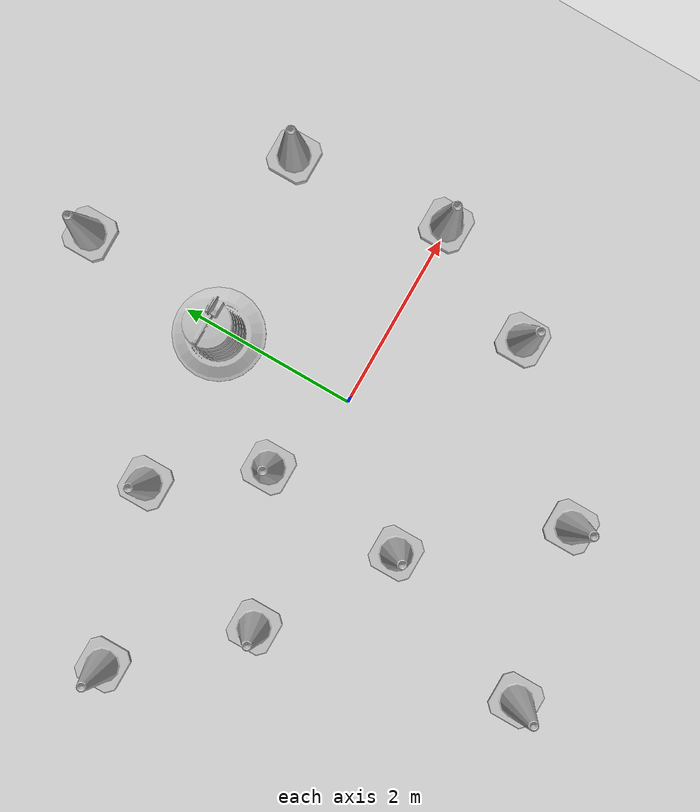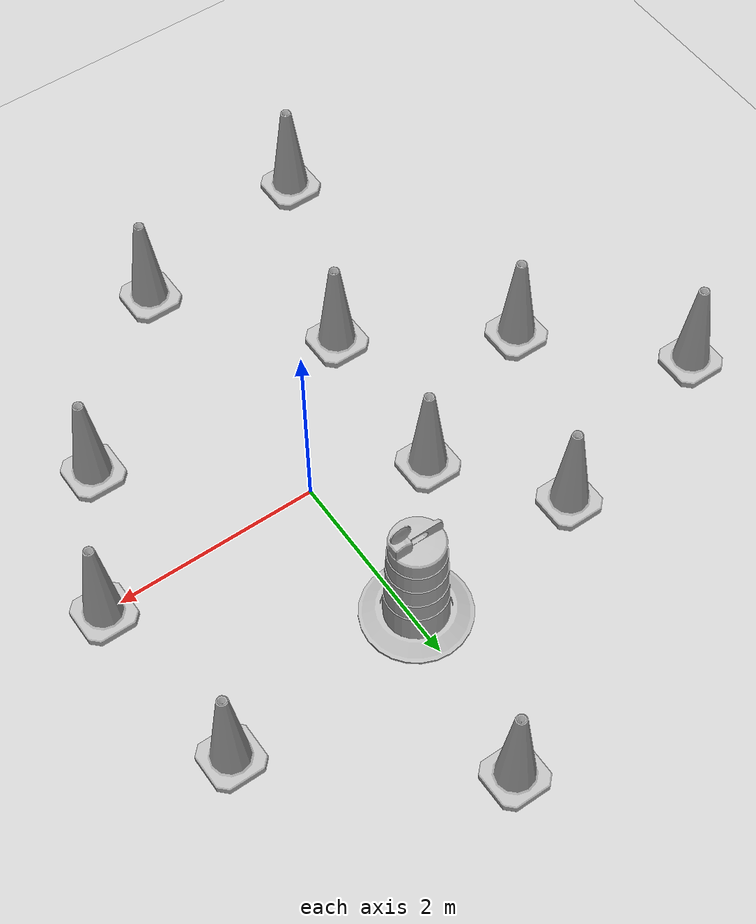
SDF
<sdf version="1.7">
 <world name="default">
  <light name="sun" type="directional">
   <pose>0 0 10 0 -0 0</pose>
   <diffuse>0.8 0.8 0.8 1</diffuse>
   <specular>0.2 0.2 0.2 1</specular>
   <attenuation>
    <range>1000</range>
    <constant>0.9</constant>
    <linear>0.01</linear>
    <quadratic>0.001</quadratic>
   </attenuation>
   <direction>-0.5 0.1 -0.9</direction>
   <spot><inner_angle>0</inner_angle><outer_angle>0</outer_angle><falloff>0</falloff></spot>
  </light>
  <model name="ground_plane">
   <static>1</static>
   <link name="link">
    <collision name="collision">
     <geometry><plane><normal>0 0 1</normal><size>100 100</size></plane></geometry>
     <surface>
      <contact><collide_bitmask>65535</collide_bitmask></contact>
      <friction><ode><mu>100</mu><mu2>50</mu2></ode></friction>
     </surface>
    </collision>
    <visual name="visual">
     <cast_shadows>0</cast_shadows>
     <geometry><plane><normal>0 0 1</normal><size>100 100</size></plane></geometry>
     <material>
      <script><uri>file://media/materials/scripts/gazebo.material</uri><name>Gazebo/Grey</name></script>
     </material>
    </visual>
   </link>
  </model>
  <gravity>0 0 -9.8</gravity>
  <magnetic_field>6e-06 2.3e-05 -4.2e-05</magnetic_field>
  <atmosphere type="adiabatic"/>
  <physics type="ode">
   <max_step_size>0.001</max_step_size>
   <real_time_factor>1</real_time_factor>
   <real_time_update_rate>1000</real_time_update_rate>
  </physics>
  <scene><ambient>0.4 0.4 0.4 1</ambient><background>0.7 0.7 0.7 1</background><shadows>1</shadows></scene>
  <audio><device>default</device></audio>
  <spherical_coordinates>
   <surface_model>EARTH_WGS84</surface_model>
   <latitude_deg>0</latitude_deg>
   <longitude_deg>0</longitude_deg>
   <elevation>0</elevation>
   <heading_deg>0</heading_deg>
  </spherical_coordinates>
  <model name="Construction Barrel">
   <link name="link">
    <inertial>
     <pose>0 0 0.4 0 -0 0</pose>
     <mass>500</mass>
     <inertia><ixx>51.2096</ixx><iyy>51.2096</iyy><izz>25</izz><ixy>0</ixy><ixz>0</ixz><iyz>0</iyz></inertia>
    </inertial>
    <collision name="collision">
     <geometry><mesh><uri>model://construction_barrel/meshes/construction_barrel.dae</uri></mesh></geometry>
    </collision>
    <visual name="visual">
     <geometry><mesh><uri>model://construction_barrel/meshes/construction_barrel.dae</uri></mesh></geometry>
    </visual>
   </link>
   <pose>-0.061046 1.5676 -1e-06 4e-06 -2e-06 -2.1e-05</pose>
  </model>
  <model name="Construction Cone">
   <link name="link">
    <collision name="collision">
     <geometry>
      <mesh><scale>10 10 10</scale><uri>model://construction_cone/meshes/construction_cone.dae</uri></mesh>
     </geometry>
    </collision>
    <visual name="visual">
     <geometry>
      <mesh><scale>10 10 10</scale><uri>model://construction_cone/meshes/construction_cone.dae</uri></mesh>
     </geometry>
    </visual>
    <inertial>
     <inertia><ixx>1</ixx><ixy>0</ixy><ixz>0</ixz><iyy>1</iyy><iyz>0</iyz><izz>1</izz></inertia>
     <mass>1</mass>
    </inertial>
   </link>
   <pose>-2.60283 -0.331446 -7e-06 -4e-06 -1e-06 0</pose>
  </model>
  <model name="Construction Cone_0">
   <link name="link">
    <collision name="collision">
     <geometry>
      <mesh><scale>10 10 10</scale><uri>model://construction_cone/meshes/construction_cone.dae</uri></mesh>
     </geometry>
    </collision>
    <visual name="visual">
     <geometry>
      <mesh><scale>10 10 10</scale><uri>model://construction_cone/meshes/construction_cone.dae</uri></mesh>
     </geometry>
    </visual>
    <inertial>
     <inertia><ixx>1</ixx><ixy>0</ixy><ixz>0</ixz><iyy>1</iyy><iyz>0</iyz><izz>1</izz></inertia>
     <mass>1</mass>
    </inertial>
   </link>
   <pose>-1.84194 1.44993 -1e-05 -1e-06 0 0</pose>
  </model>
  <model name="Construction Cone_1">
   <link name="link">
    <collision name="collision">
     <geometry>
      <mesh><scale>10 10 10</scale><uri>model://construction_cone/meshes/construction_cone.dae</uri></mesh>
     </geometry>
    </collision>
    <visual name="visual">
     <geometry>
      <mesh><scale>10 10 10</scale><uri>model://construction_cone/meshes/construction_cone.dae</uri></mesh>
     </geometry>
    </visual>
    <inertial>
     <inertia><ixx>1</ixx><ixy>0</ixy><ixz>0</ixz><iyy>1</iyy><iyz>0</iyz><izz>1</izz></inertia>
     <mass>1</mass>
    </inertial>
   </link>
   <pose>-1.15506 -1.25964 0 -0 -0 -0</pose>
  </model>
  <model name="Construction Cone_2">
   <link name="link">
    <collision name="collision">
     <geometry>
      <mesh><scale>10 10 10</scale><uri>model://construction_cone/meshes/construction_cone.dae</uri></mesh>
     </geometry>
    </collision>
    <visual name="visual">
     <geometry>
      <mesh><scale>10 10 10</scale><uri>model://construction_cone/meshes/construction_cone.dae</uri></mesh>
     </geometry>
    </visual>
    <inertial>
     <inertia><ixx>1</ixx><ixy>0</ixy><ixz>0</ixz><iyy>1</iyy><iyz>0</iyz><izz>1</izz></inertia>
     <mass>1</mass>
    </inertial>
   </link>
   <pose>1.50787 -1.29825 -0 0 -0 0</pose>
  </model>
  <model name="Construction Cone_3">
   <link name="link">
    <collision name="collision">
     <geometry>
      <mesh><scale>10 10 10</scale><uri>model://construction_cone/meshes/construction_cone.dae</uri></mesh>
     </geometry>
    </collision>
    <visual name="visual">
     <geometry>
      <mesh><scale>10 10 10</scale><uri>model://construction_cone/meshes/construction_cone.dae</uri></mesh>
     </geometry>
    </visual>
    <inertial>
     <inertia><ixx>1</ixx><ixy>0</ixy><ixz>0</ixz><iyy>1</iyy><iyz>0</iyz><izz>1</izz></inertia>
     <mass>1</mass>
    </inertial>
   </link>
   <pose>-1.0374 0.387572 -0 0 -0 0</pose>
  </model>
  <model name="Construction Cone_4">
   <link name="link">
    <collision name="collision">
     <geometry>
      <mesh><scale>10 10 10</scale><uri>model://construction_cone/meshes/construction_cone.dae</uri></mesh>
     </geometry>
    </collision>
    <visual name="visual">
     <geometry>
      <mesh><scale>10 10 10</scale><uri>model://construction_cone/meshes/construction_cone.dae</uri></mesh>
     </geometry>
    </visual>
    <inertial>
     <inertia><ixx>1</ixx><ixy>0</ixy><ixz>0</ixz><iyy>1</iyy><iyz>0</iyz><izz>1</izz></inertia>
     <mass>1</mass>
    </inertial>
   </link>
   <pose>-1.88284 -3.16416 -0 0 -0 0</pose>
  </model>
  <model name="Construction Cone_5">
   <link name="link">
    <collision name="collision">
     <geometry>
      <mesh><scale>10 10 10</scale><uri>model://construction_cone/meshes/construction_cone.dae</uri></mesh>
     </geometry>
    </collision>
    <visual name="visual">
     <geometry>
      <mesh><scale>10 10 10</scale><uri>model://construction_cone/meshes/construction_cone.dae</uri></mesh>
     </geometry>
    </visual>
    <inertial>
     <inertia><ixx>1</ixx><ixy>0</ixy><ixz>0</ixz><iyy>1</iyy><iyz>0</iyz><izz>1</izz></inertia>
     <mass>1</mass>
    </inertial>
   </link>
   <pose>0.025318 -2.75059 -0 0 -0 0</pose>
  </model>
  <model name="Construction Cone_6">
   <link name="link">
    <collision name="collision">
     <geometry>
      <mesh><scale>10 10 10</scale><uri>model://construction_cone/meshes/construction_cone.dae</uri></mesh>
     </geometry>
    </collision>
    <visual name="visual">
     <geometry>
      <mesh><scale>10 10 10</scale><uri>model://construction_cone/meshes/construction_cone.dae</uri></mesh>
     </geometry>
    </visual>
    <inertial>
     <inertia><ixx>1</ixx><ixy>0</ixy><ixz>0</ixz><iyy>1</iyy><iyz>0</iyz><izz>1</izz></inertia>
     <mass>1</mass>
    </inertial>
   </link>
   <pose>2.16814 0.026718 -0 0 -1e-06 0</pose>
  </model>
  <model name="Construction Cone_7">
   <link name="link">
    <collision name="collision">
     <geometry>
      <mesh><scale>10 10 10</scale><uri>model://construction_cone/meshes/construction_cone.dae</uri></mesh>
     </geometry>
    </collision>
    <visual name="visual">
     <geometry>
      <mesh><scale>10 10 10</scale><uri>model://construction_cone/meshes/construction_cone.dae</uri></mesh>
     </geometry>
    </visual>
    <inertial>
     <inertia><ixx>1</ixx><ixy>0</ixy><ixz>0</ixz><iyy>1</iyy><iyz>0</iyz><izz>1</izz></inertia>
     <mass>1</mass>
    </inertial>
   </link>
   <pose>1.9997 1.8153 -1e-06 2e-06 2e-06 0</pose>
  </model>
  <model name="Construction Cone_8">
   <link name="link">
    <collision name="collision">
     <geometry>
      <mesh><scale>10 10 10</scale><uri>model://construction_cone/meshes/construction_cone.dae</uri></mesh>
     </geometry>
    </collision>
    <visual name="visual">
     <geometry>
      <mesh><scale>10 10 10</scale><uri>model://construction_cone/meshes/construction_cone.dae</uri></mesh>
     </geometry>
    </visual>
    <inertial>
     <inertia><ixx>1</ixx><ixy>0</ixy><ixz>0</ixz><iyy>1</iyy><iyz>0</iyz><izz>1</izz></inertia>
     <mass>1</mass>
    </inertial>
   </link>
   <pose>-3.7613 0.877727 0 -0 -0 -0</pose>
  </model>
  <model name="Construction Cone_9">
   <link name="link">
    <collision name="collision">
     <geometry>
      <mesh><scale>10 10 10</scale><uri>model://construction_cone/meshes/construction_cone.dae</uri></mesh>
     </geometry>
    </collision>
    <visual name="visual">
     <geometry>
      <mesh><scale>10 10 10</scale><uri>model://construction_cone/meshes/construction_cone.dae</uri></mesh>
     </geometry>
    </visual>
    <inertial>
     <inertia><ixx>1</ixx><ixy>0</ixy><ixz>0</ixz><iyy>1</iyy><iyz>0</iyz><izz>1</izz></inertia>
     <mass>1</mass>
    </inertial>
   </link>
   <pose>0.181777 3.29885 -0 0 -1e-06 0</pose>
  </model>
 </world>
</sdf>
